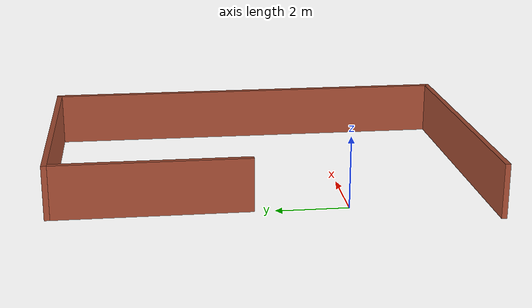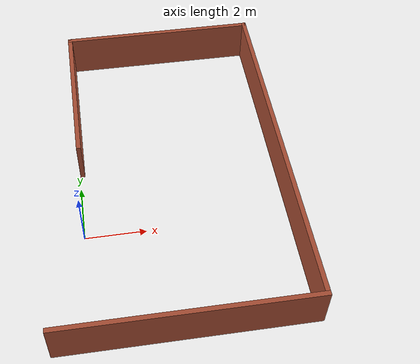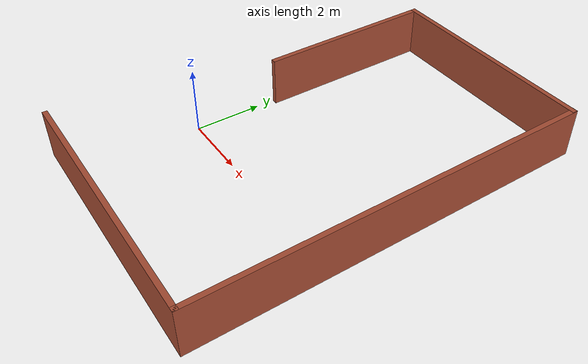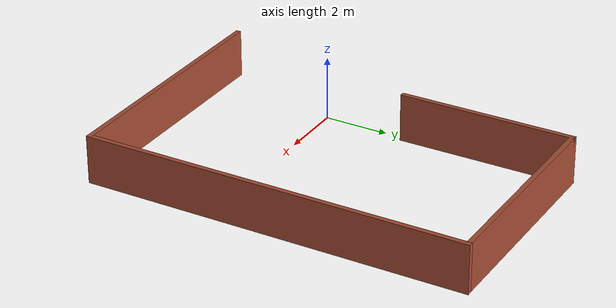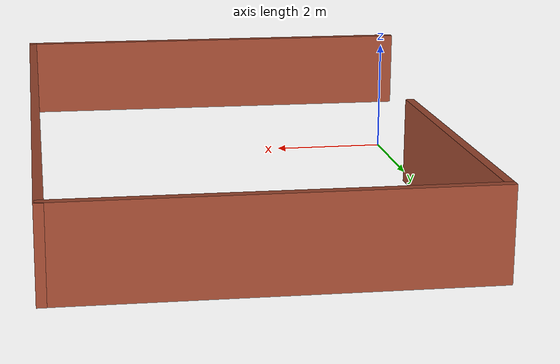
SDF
<?xml version='1.0'?>
<sdf version='1.7'>
  <model name='box1'>
    <pose>2.785 2.06 0 0 -0 0</pose>
    <link name='Wall_0'>
      <collision name='Wall_0_Collision'>
        <geometry>
          <box>
            <size>12 0.15 1.5</size>
          </box>
        </geometry>
        <pose>0 0 0.75 0 -0 0</pose>
      </collision>
      <visual name='Wall_0_Visual'>
        <pose>0 0 0.75 0 -0 0</pose>
        <geometry>
          <box>
            <size>12 0.15 1.5</size>
          </box>
        </geometry>
        <material>
          <script>
            <uri>file://media/materials/scripts/gazebo.material</uri>
            <name>Gazebo/Bricks</name>
          </script>
          <ambient>1 1 1 1</ambient>
        </material>
        <meta>
          <layer>0</layer>
        </meta>
      </visual>
      <pose>3.925 -0 0 0 -0 1.5708</pose>
    </link>
    <link name='Wall_3'>
      <collision name='Wall_3_Collision'>
        <geometry>
          <box>
            <size>6.75 0.15 1.5</size>
          </box>
        </geometry>
        <pose>0 0 0.75 0 -0 0</pose>
      </collision>
      <visual name='Wall_3_Visual'>
        <pose>0 0 0.75 0 -0 0</pose>
        <geometry>
          <box>
            <size>6.75 0.15 1.5</size>
          </box>
        </geometry>
        <material>
          <script>
            <uri>file://media/materials/scripts/gazebo.material</uri>
            <name>Gazebo/Bricks</name>
          </script>
          <ambient>1 1 1 1</ambient>
        </material>
        <meta>
          <layer>0</layer>
        </meta>
      </visual>
      <pose>0.61 5.92 0 0 -0 0</pose>
    </link>
    <link name='Wall_7'>
      <collision name='Wall_7_Collision'>
        <geometry>
          <box>
            <size>5.5 0.15 1.5</size>
          </box>
        </geometry>
        <pose>0 0 0.75 0 -0 0</pose>
      </collision>
      <visual name='Wall_7_Visual'>
        <pose>0 0 0.75 0 -0 0</pose>
        <geometry>
          <box>
            <size>5.5 0.15 1.5</size>
          </box>
        </geometry>
        <material>
          <script>
            <uri>file://media/materials/scripts/gazebo.material</uri>
            <name>Gazebo/Bricks</name>
          </script>
          <ambient>1 1 1 1</ambient>
        </material>
        <meta>
          <layer>0</layer>
        </meta>
      </visual>
      <pose>-2.69 3.245 0 0 -0 -1.5708</pose>
    </link>
    <link name='Wall_9'>
      <collision name='Wall_9_Collision'>
        <geometry>
          <box>
            <size>8 0.15 1.5</size>
          </box>
        </geometry>
        <pose>0 0 0.75 0 -0 0</pose>
      </collision>
      <visual name='Wall_9_Visual'>
        <pose>0 0 0.75 0 -0 0</pose>
        <geometry>
          <box>
            <size>8 0.15 1.5</size>
          </box>
        </geometry>
        <material>
          <script>
            <uri>file://media/materials/scripts/gazebo.material</uri>
            <name>Gazebo/Bricks</name>
          </script>
          <ambient>1 1 1 1</ambient>
        </material>
        <meta>
          <layer>0</layer>
        </meta>
      </visual>
      <pose>-0 -5.925 0 0 -0 3.14159</pose>
    </link>
    <static>1</static>
  </model>
</sdf>
